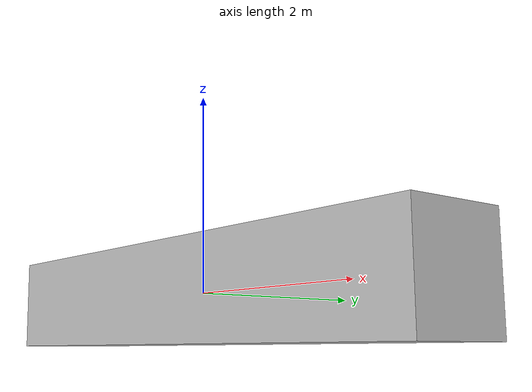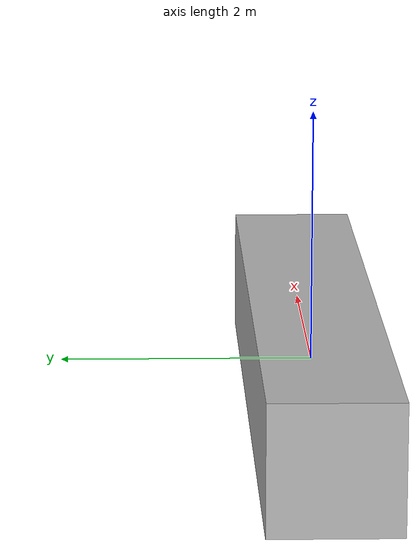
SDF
<?xml version="1.0" ?>
<sdf version="1.6">
  <model name="simple_box">
    <link name="link">
      <visual name="visual">
        <geometry>
          <box>
            <size>6 1 1</size>
          </box>
        </geometry>
      </visual>
      <collision name="collision">
        <geometry>
          <box>
            <size>6 1 1</size>
          </box>
        </geometry>
      </collision>
    </link>
  </model>
</sdf>
